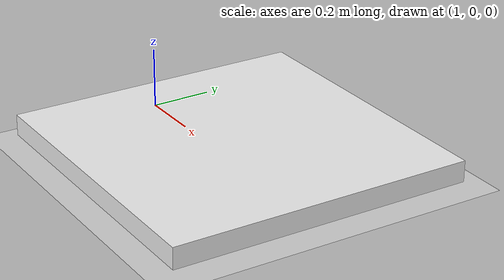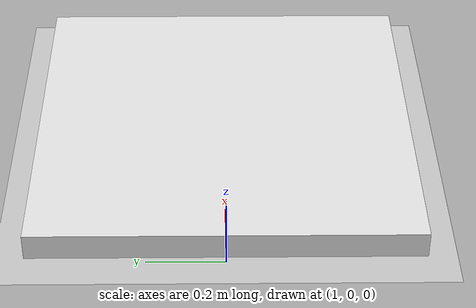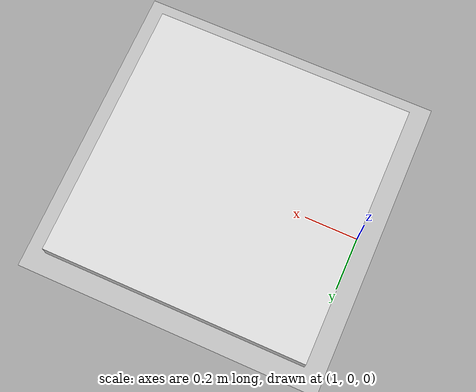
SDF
<sdf version='1.4'>
  <world name='default'>

    <model name="stair">
      <static>true</static>

      <link name="stair">
        <pose>1.5 0 .05 0 0 0</pose>
        <collision name="collision">
          <geometry>
            <box>
              <size>1 1 .07</size>
            </box>
          </geometry>
        </collision>
        <visual name="visual">
          <geometry>
            <box>
              <size>1 1 .07</size>
            </box>
          </geometry>
          <material>
            <script>
              <uri>file://media/materials/scripts/gazebo.material</uri>
              <name>Gazebo/White</name>
            </script>
          </material>
        </visual>
      </link>
    </model>

    <include>
      <uri>model://ground_plane</uri>
    </include>

    <include>
      <uri>model://sun</uri>
    </include>

    <gui fullscreen='0'>
      <camera name='user_camera'>
        <pose>2.29881 -5.49356 3.37977 0 0.5618 1.81609</pose>
        <view_controller>orbit</view_controller>
        <projection_type>perspective</projection_type>
      </camera>
    </gui>

  </world>
</sdf>
